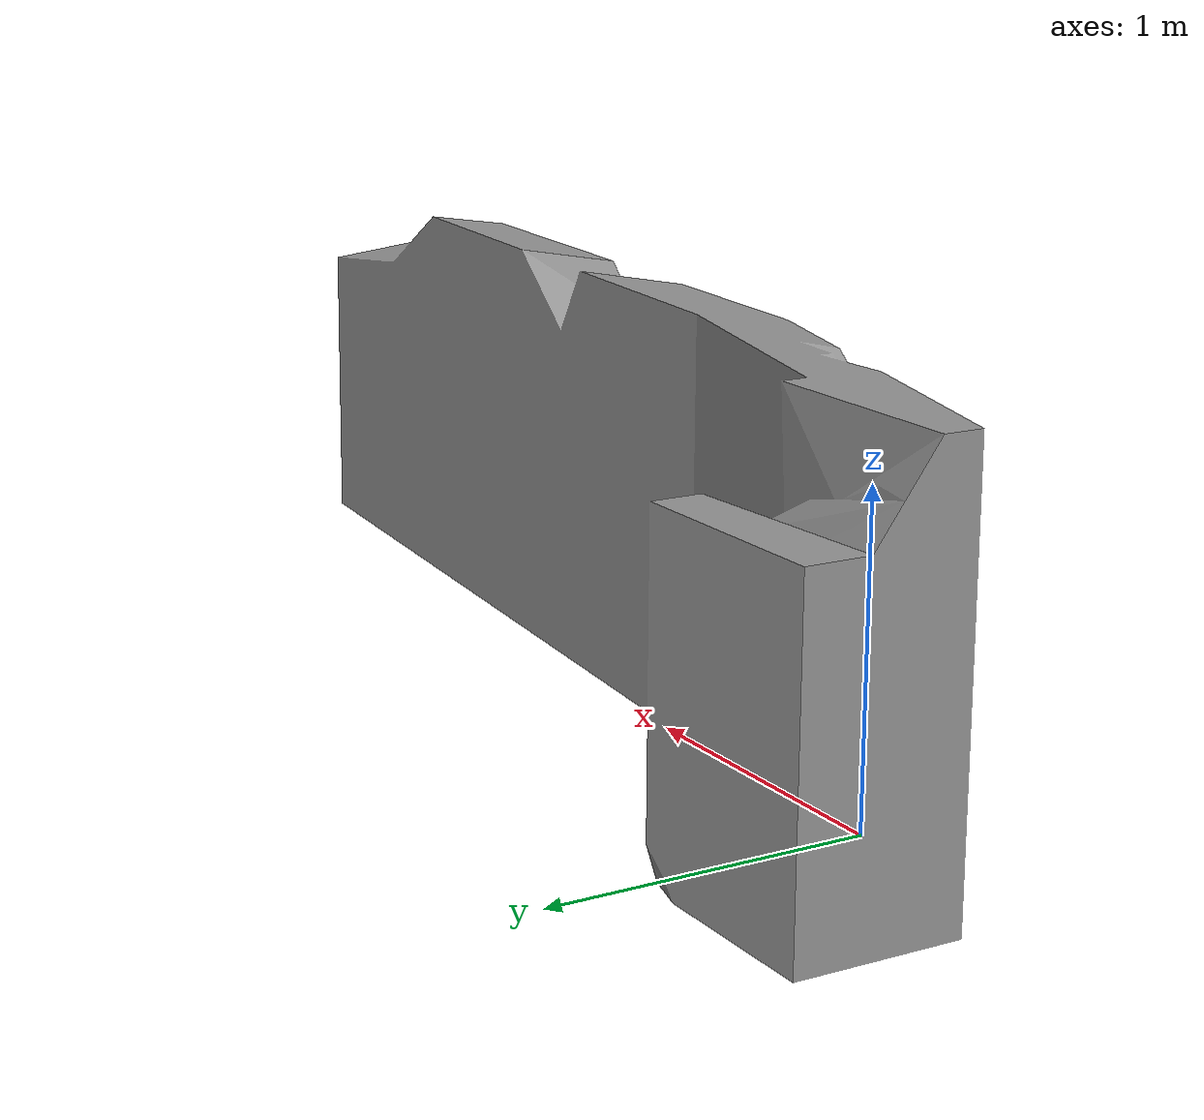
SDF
<?xml version="1.0"?>
<sdf version="1.4">
  <model name="Grey Brick Wall">
    <link name="link">
      <inertial>
        <pose>0 0 0.4 0 0 0</pose>
        <mass>500</mass>
        <inertia>
          <ixx>51.2096</ixx>
          <iyy>51.2096</iyy>
          <izz>25</izz>
          <ixy>0</ixy>
          <ixz>0</ixz>
        </inertia>
      </inertial>
      <collision name="collision">
        <geometry>
          <mesh>
            <uri>model://grey_brickwall/meshes/grey_brickwall.dae</uri>
 	    <scale> 0.5 0.1 0.3 </scale>
          </mesh>
        </geometry>
      </collision>
      <visual name="visual">
        <geometry>
          <mesh>
            <uri>model://grey_brickwall/meshes/grey_brickwall.dae</uri>
 	    <scale> 0.5 0.1 0.3 </scale>
          </mesh>
        </geometry>
        <material>
          <script>
            <uri>model://grey_brickwall/materials/scripts</uri>
            <uri>model://grey_brickwall/materials/textures</uri>
            <name>vrc/grey_wall</name>
          </script>
        </material>
      </visual>
    </link>
  </model>
</sdf>
